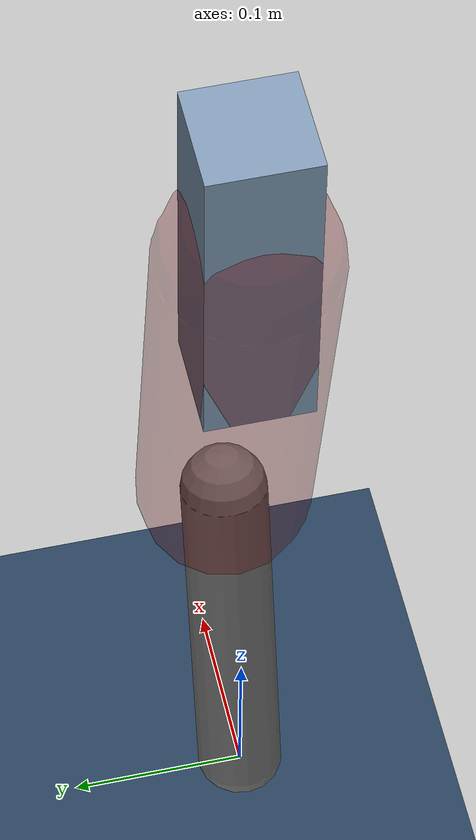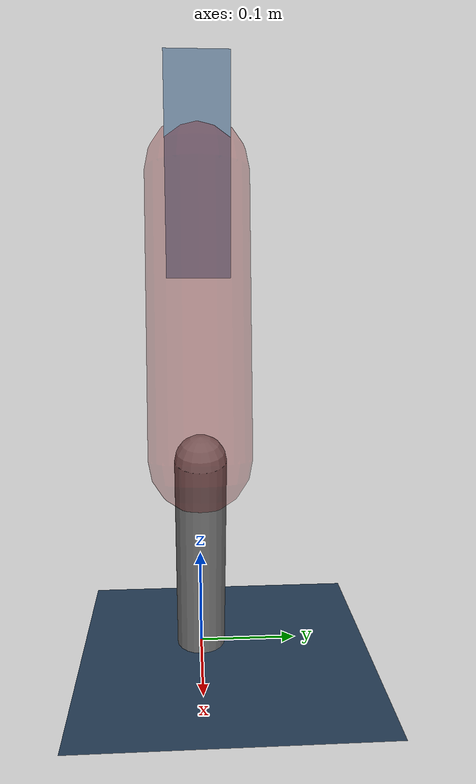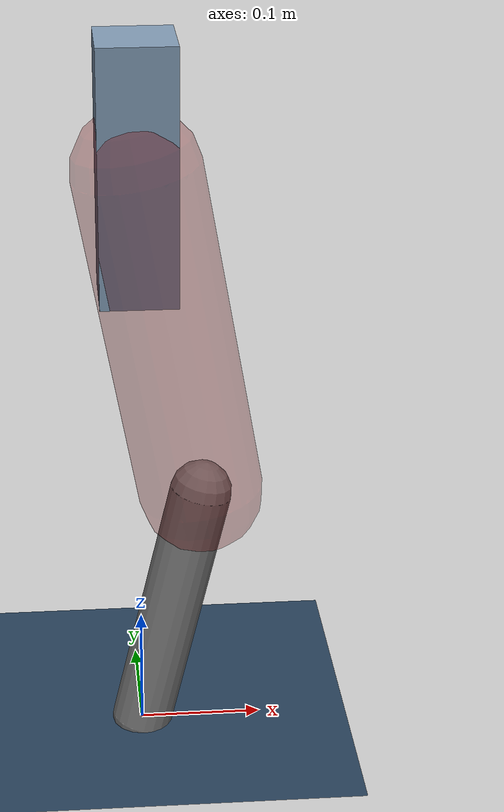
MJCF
<mujoco model="Hopper2D">
	<compiler inertiafromgeom="true" angle="radian" />
	<option timestep="0.001" integrator="implicit" cone="elliptic" solver="Newton" tolerance="1e-10" />

	<default>
		<geom contype="1" conaffinity="1" condim="3" friction="2 0.005 0.0001" solref="0.005 1" />
		<joint limited="true" damping="0.1" />
	</default>

	<asset>
		<texture name="skybox" type="skybox" builtin="gradient" rgb1=".4 .6 .8" rgb2="0 0 0" width="800" height="800" />
		<texture name="grid" type="2d" builtin="checker" rgb1=".1 .2 .3" rgb2=".2 .3 .4" width="300" height="300" mark="edge" markrgb=".2 .3 .4" />
		<material name="ground" texture="grid" texrepeat="1 1" texuniform="true" reflectance="0.1" />
		<material name="leg" rgba="0.5 0.6 0.7 1" />
	</asset>

	<worldbody>

		<geom name="floor" type="plane" size="5 5 0.25" material="ground" />

		<light directional="false" diffuse="0.8 0.8 0.8" specular="0.3 0.3 0.3" pos="0 0 2" dir="0 0 -1" />
		<light mode="targetbodycom" target="base" directional="false" diffuse="0.8 0.8 0.8" specular="0.3 0.3 0.3" pos="0 0 2" dir="0 0 -1" />

		<camera name="fixed" pos="0 -2 1" xyaxes="1 0 0 0 0 1" />
		<camera name="tracking" mode="trackcom" pos="0 -3 1" />

		<body name="root" pos="0 0 0.48685922653173874">
			<joint name="slide_x" type="slide" axis="1 0 0" range="-100 100" />
			<joint name="slide_z" type="slide" axis="0 0 1" range="0 10" />

			<body name="base" pos="0 0 0">
				<geom name="torso" type="box" size="0.03 0.03 0.1" mass="3.105" material="leg" />

				<body name="link1" pos="0 0 0" euler="0 1.3910279242888532 0">
					<joint type="hinge" axis="0 -1 0" pos="0 0 0" name="hinge1" limited="true" range="-3.14 3.14" stiffness="0" damping="0.1" />
					<geom name="thigh" type="capsule" fromto="0 0 0 0.2756181915193304 0 0" size="0.05" rgba="0.5 0 0 0.3" mass="0.9235072979502591" />

					<body name="link2" pos="0.2756181915193304 0 0" euler="0 0.4044008204022081 0">
						<joint type="hinge" axis="0 -1 0" pos="0 0 0" name="hinge2" limited="true" range="-3.14 3.14" stiffness="0" damping="0.1" />
						<geom name="shank" type="capsule" fromto="0 0 0 0.2212410350124083 0 0" size="0.025" mass="0.41869282800992663" />

					</body>
				</body>
			</body>
		</body>
	</worldbody>

	<actuator>
		<motor name="torque1" joint="hinge1" ctrlrange="-99.22348318174066 99.22348318174066" ctrllimited="true" gear="1" />
		<motor name="torque2" joint="hinge2" ctrlrange="-103.06471646536515 103.06471646536515" ctrllimited="true" gear="1" />
	</actuator>
</mujoco>
